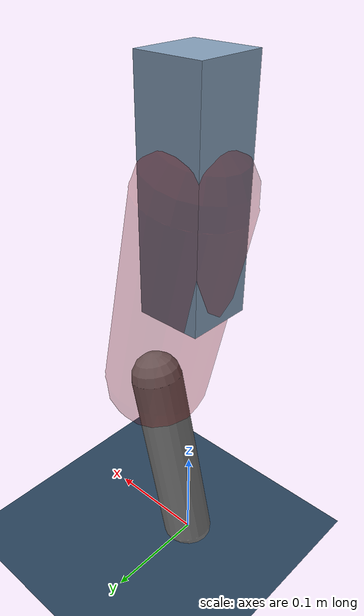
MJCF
<mujoco model="Hopper2D">
	<compiler inertiafromgeom="true" angle="radian" />
	<option timestep="0.001" integrator="implicit" cone="elliptic" solver="Newton" tolerance="1e-10" />

	<default>
		<geom contype="1" conaffinity="1" condim="3" friction="2 0.005 0.0001" solref="0.005 1" />
		<joint limited="true" damping="0.1" />
	</default>

	<asset>
		<texture name="skybox" type="skybox" builtin="gradient" rgb1=".4 .6 .8" rgb2="0 0 0" width="800" height="800" />
		<texture name="grid" type="2d" builtin="checker" rgb1=".1 .2 .3" rgb2=".2 .3 .4" width="300" height="300" mark="edge" markrgb=".2 .3 .4" />
		<material name="ground" texture="grid" texrepeat="1 1" texuniform="true" reflectance="0.1" />
		<material name="leg" rgba="0.5 0.6 0.7 1" />
	</asset>

	<worldbody>

		<geom name="floor" type="plane" size="5 5 0.25" material="ground" />

		<light directional="false" diffuse="0.8 0.8 0.8" specular="0.3 0.3 0.3" pos="0 0 2" dir="0 0 -1" />
		<light mode="targetbodycom" target="base" directional="false" diffuse="0.8 0.8 0.8" specular="0.3 0.3 0.3" pos="0 0 2" dir="0 0 -1" />

		<camera name="fixed" pos="0 -2 1" xyaxes="1 0 0 0 0 1" />
		<camera name="tracking" mode="trackcom" pos="0 -3 1" />

		<body name="root" pos="0 0 0.3750235472564102">
			<joint name="slide_x" type="slide" axis="1 0 0" range="-100 100" />
			<joint name="slide_z" type="slide" axis="0 0 1" range="0 10" />

			<body name="base" pos="0 0 0">
				<geom name="torso" type="box" size="0.03 0.03 0.1" mass="2.1870000000000003" material="leg" />

				<body name="link1" pos="0 0 0" euler="0 1.347389514227287 0">
					<joint type="hinge" axis="0 -1 0" pos="0 0 0" name="hinge1" limited="true" range="-3.14 3.14" stiffness="0" damping="0.1" />
					<geom name="thigh" type="capsule" fromto="0 0 0 0.19669991318134503 0 0" size="0.05" rgba="0.5 0 0 0.3" mass="0.7214497829533625" />

					<body name="link2" pos="0.19669991318134503 0 0" euler="0 0.4569308221981561 0">
						<joint type="hinge" axis="0 -1 0" pos="0 0 0" name="hinge2" limited="true" range="-3.14 3.14" stiffness="0" damping="0.1" />
						<geom name="shank" type="capsule" fromto="0 0 0 0.18832363407506517 0 0" size="0.025" mass="0.3909912706675586" />

					</body>
				</body>
			</body>
		</body>
	</worldbody>

	<actuator>
		<motor name="torque1" joint="hinge1" ctrlrange="-107.5861096335302 107.5861096335302" ctrllimited="true" gear="1" />
		<motor name="torque2" joint="hinge2" ctrlrange="-30.080392457968944 30.080392457968944" ctrllimited="true" gear="1" />
	</actuator>
</mujoco>
